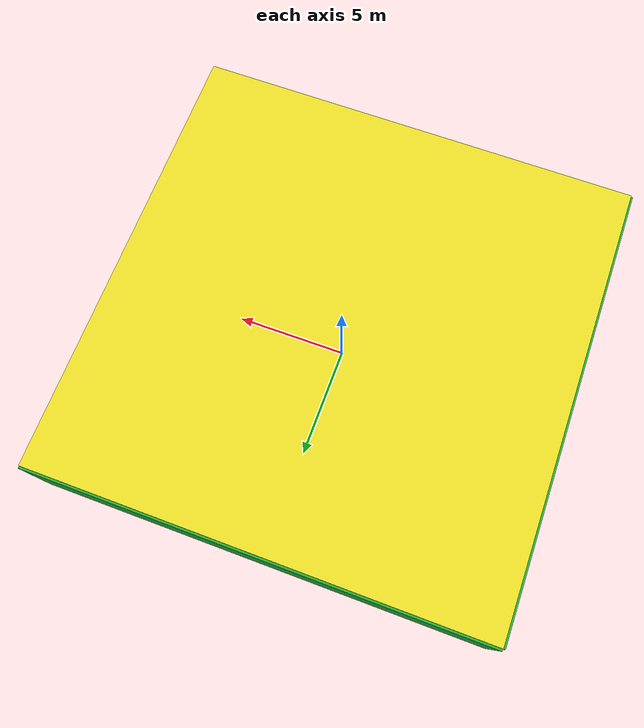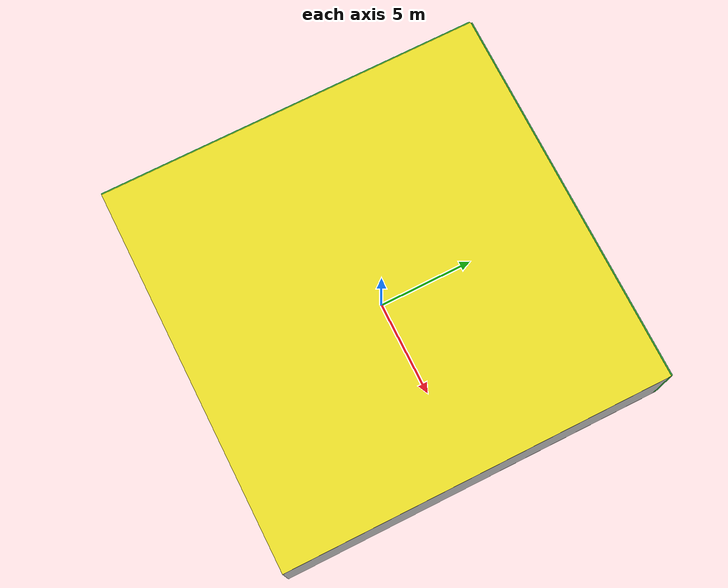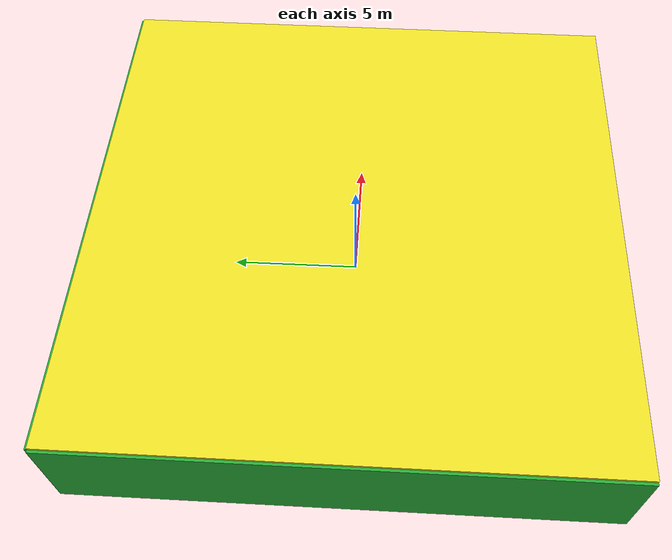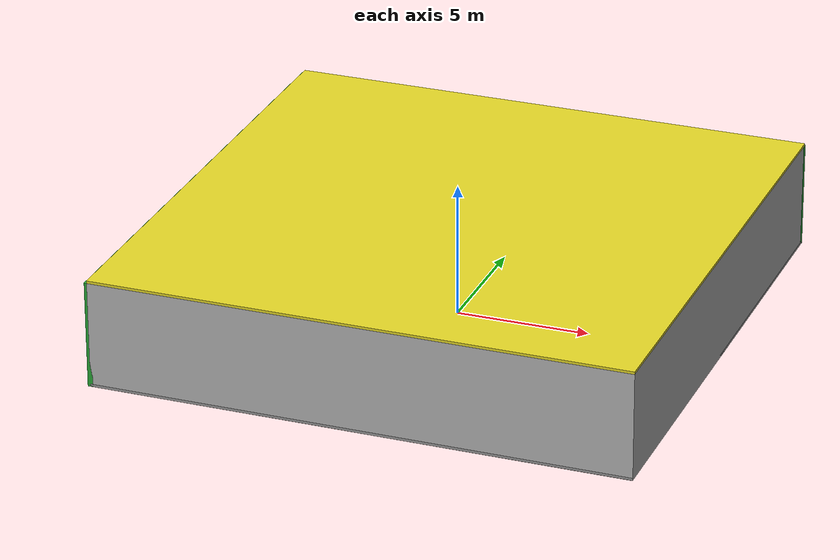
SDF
<sdf version="1.4">
 <world name="default">
  <physics type="ode">
   <max_step_size>0.001</max_step_size>
   <real_time_factor>1</real_time_factor>
   <real_time_update_rate>1000</real_time_update_rate>
   <gravity>0 0 -9.8</gravity>
  </physics>
  <scene><ambient>0.4 0.4 0.4 1</ambient><background>0.7 0.7 0.7 1</background><shadows>1</shadows></scene>
  <model name="Surrounding">
   <static>1</static>
   <link name="Ceiling">
    <collision name="Ceiling_Collision"><geometry><box><size>20 20 0.1</size></box></geometry></collision>
    <visual name="Ceiling_Visual">
     <geometry><box><size>20 20 0.1</size></box></geometry>
     <material>
      <script><uri>file://media/materials/scripts/gazebo.material</uri><name>Gazebo/YellowGlow</name></script>
     </material>
    </visual>
    <pose>0 0 4.05 0 0 0</pose>
   </link>
   <link name="Wall_South">
    <collision name="Wall_South_Collision">
     <geometry><box><size>20 0 4</size></box></geometry>
     <pose>0 0 2 0 -0 0</pose>
    </collision>
    <visual name="Wall_South_Visual">
     <pose>0 0 2 0 -0 0</pose>
     <geometry><box><size>20 0 4</size></box></geometry>
     <material>
      <script><uri>file://media/materials/scripts/gazebo.material</uri><name>Gazebo/LightOff</name></script>
     </material>
    </visual>
    <velocity_decay><linear>0</linear><angular>0</angular></velocity_decay>
    <pose>0 -10 0 0 -0 0</pose>
   </link>
   <link name="Wall_East">
    <collision name="Wall_21_Collision">
     <geometry><box><size>20 0 4</size></box></geometry>
     <pose>0 0 2 0 -0 0</pose>
    </collision>
    <visual name="Wall_21_Visual">
     <pose>0 0 2 0 -0 0</pose>
     <geometry><box><size>20 0 4</size></box></geometry>
     <material>
      <script><uri>file://media/materials/scripts/gazebo.material</uri><name>Gazebo/CloudySky</name></script>
     </material>
    </visual>
    <velocity_decay><linear>0</linear><angular>0</angular></velocity_decay>
    <pose>10 0 0 0 -0 1.5708</pose>
   </link>
   <link name="Wall_North">
    <collision name="Wall_22_Collision">
     <geometry><box><size>20 0.2 4</size></box></geometry>
     <pose>0 0 2 0 -0 0</pose>
    </collision>
    <visual name="Wall_22_Visual">
     <pose>0 0 2 0 -0 0</pose>
     <geometry><box><size>20 0.2 4</size></box></geometry>
     <material>
      <script><uri>file://media/materials/scripts/gazebo.material</uri><name>Gazebo/Green</name></script>
     </material>
    </visual>
    <velocity_decay><linear>0</linear><angular>0</angular></velocity_decay>
    <pose>0 10 0 0 -0 0</pose>
   </link>
   <link name="Wall_West">
    <collision name="Wall_23_Collision">
     <geometry><box><size>20 0.2 4</size></box></geometry>
     <pose>0 0 2 0 -0 0</pose>
    </collision>
    <visual name="Wall_23_Visual">
     <pose>0 0 2 0 -0 0</pose>
     <geometry><box><size>20 0.2 4</size></box></geometry>
     <material>
      <script><uri>file://media/materials/scripts/gazebo.material</uri><name>Gazebo/Green</name></script>
     </material>
    </visual>
    <velocity_decay><linear>0</linear><angular>0</angular></velocity_decay>
    <pose>-10 0 0 0 0 -1.5708</pose>
   </link>
   <link name="Ground_link">
    <collision name="collision">
     <pose>0 0 .05 0 -0 0</pose>
     <geometry><box><size>20 20 0.1</size></box></geometry>
    </collision>
    <visual name="visual">
     <pose>0 0 .05 0 -0 0</pose>
     <geometry><box><size>20 20 0.1</size></box></geometry>
     <material>
      <script><uri>file://media/materials/scripts/gazebo.material</uri><name>Gazebo/GreyGradientSky</name></script>
     </material>
    </visual>
   </link>
   <static>1</static>
  </model>
  <spherical_coordinates>
   <surface_model>EARTH_WGS84</surface_model>
   <latitude_deg>0</latitude_deg>
   <longitude_deg>0</longitude_deg>
   <elevation>0</elevation>
   <heading_deg>0</heading_deg>
  </spherical_coordinates>
  <light name="lightball_0" type="diffuse">
   <diffuse>0.8 0.8 0.8 1</diffuse>
   <specular>0.2 0.2 0.2 1</specular>
   <attenuation>
    <range>100</range>
    <constant>0.7</constant>
    <linear>0.01</linear>
    <quadratic>0.001</quadratic>
   </attenuation>
   <direction>-0.5 0.1 -0.9</direction>
   <pose>2.07651645189 -0.517278232433 2.10613222889 0 0 0</pose>
  </light>
  <light name="lightball_1" type="diffuse">
   <diffuse>0.8 0.8 0.8 1</diffuse>
   <specular>0.2 0.2 0.2 1</specular>
   <attenuation>
    <range>100</range>
    <constant>0.7</constant>
    <linear>0.01</linear>
    <quadratic>0.001</quadratic>
   </attenuation>
   <direction>-0.5 0.1 -0.9</direction>
   <pose>-3.01754881086 -6.61165223015 2.10434962707 0 0 0</pose>
  </light>
  <light name="lightball_2" type="diffuse">
   <diffuse>0.8 0.8 0.8 1</diffuse>
   <specular>0.2 0.2 0.2 1</specular>
   <attenuation>
    <range>100</range>
    <constant>0.7</constant>
    <linear>0.01</linear>
    <quadratic>0.001</quadratic>
   </attenuation>
   <direction>-0.5 0.1 -0.9</direction>
   <pose>9.29420820026 -7.21264574294 2.51164243913 0 0 0</pose>
  </light>
  <light name="lightball_3" type="diffuse">
   <diffuse>0.8 0.8 0.8 1</diffuse>
   <specular>0.2 0.2 0.2 1</specular>
   <attenuation>
    <range>100</range>
    <constant>0.7</constant>
    <linear>0.01</linear>
    <quadratic>0.001</quadratic>
   </attenuation>
   <direction>-0.5 0.1 -0.9</direction>
   <pose>2.94290183882 6.1584112861 2.55164455822 0 0 0</pose>
  </light>
  <light name="lightball_4" type="diffuse">
   <diffuse>0.8 0.8 0.8 1</diffuse>
   <specular>0.2 0.2 0.2 1</specular>
   <attenuation>
    <range>100</range>
    <constant>0.7</constant>
    <linear>0.01</linear>
    <quadratic>0.001</quadratic>
   </attenuation>
   <direction>-0.5 0.1 -0.9</direction>
   <pose>1.13591187894 -9.92658148542 1.60638347789 0 0 0</pose>
  </light>
  <light name="lightball_5" type="diffuse">
   <diffuse>0.8 0.8 0.8 1</diffuse>
   <specular>0.2 0.2 0.2 1</specular>
   <attenuation>
    <range>100</range>
    <constant>0.7</constant>
    <linear>0.01</linear>
    <quadratic>0.001</quadratic>
   </attenuation>
   <direction>-0.5 0.1 -0.9</direction>
   <pose>6.55453131222 7.77052314214 2.03347632682 0 0 0</pose>
  </light>
  <light name="lightball_6" type="diffuse">
   <diffuse>0.8 0.8 0.8 1</diffuse>
   <specular>0.2 0.2 0.2 1</specular>
   <attenuation>
    <range>100</range>
    <constant>0.7</constant>
    <linear>0.01</linear>
    <quadratic>0.001</quadratic>
   </attenuation>
   <direction>-0.5 0.1 -0.9</direction>
   <pose>4.62083144848 -1.65337088045 1.46299985414 0 0 0</pose>
  </light>
  <light name="lightball_7" type="diffuse">
   <diffuse>0.8 0.8 0.8 1</diffuse>
   <specular>0.2 0.2 0.2 1</specular>
   <attenuation>
    <range>100</range>
    <constant>0.7</constant>
    <linear>0.01</linear>
    <quadratic>0.001</quadratic>
   </attenuation>
   <direction>-0.5 0.1 -0.9</direction>
   <pose>3.31762524848 7.75766933735 0.699373100623 0 0 0</pose>
  </light>
  <include>
   <uri>model://robocup_3Dsim_goal</uri>
   <pose>-8.41389315401 6.58474907936 0 0 0 0.734279891293</pose>
  </include>
  <include><uri>model://cabinet</uri><pose>-4.21410095111 -3.42443428052 0 0 0 1.34597486074</pose></include>
  <include><uri>model://table</uri><pose>1.13721824549 -1.77274071517 0 0 0 0.901121389825</pose></include>
  <include>
   <uri>model://construction_cone</uri>
   <pose>4.13190282139 -1.17612756595 0 0 0 0.119093624374</pose>
  </include>
  <include><uri>model://cabinet</uri><pose>5.03171968444 7.75515231576 0 0 0 2.24349890828</pose></include>
 </world>
</sdf>

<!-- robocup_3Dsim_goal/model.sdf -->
<sdf version="1.5">
  <model name="robocup_3d_goal">
    <static>true</static>
    <link name="left_post">
      <pose>0 1.05 0.45 0 0 0</pose>
      <collision name="collision">
        <geometry>
          <cylinder>
            <radius>0.05</radius>
            <length>0.9</length>
          </cylinder>
        </geometry>
      </collision>
      <visual name="visual">
        <geometry>
          <cylinder>
            <radius>0.05</radius>
            <length>0.9</length>
          </cylinder>
        </geometry>
        <material>
          <script>
            <uri>file://media/materials/scripts/gazebo.material</uri>
            <name>Gazebo/ZincYellow</name>
          </script>
        </material>
      </visual>
    </link>
    <link name="left_support_horiz_lower">
      <pose>0.30 1.05 0.01 0 0 0</pose>
      <collision name="collision">
        <geometry>
          <box>
            <size>0.50 0.02 0.02</size>
          </box>
        </geometry>
      </collision>
      <visual name="visual">
        <geometry>
          <box>
            <size>0.50 0.02 0.02</size>
          </box>
        </geometry>
        <material>
          <script>
            <uri>file://media/materials/scripts/gazebo.material</uri>
            <name>Gazebo/White</name>
          </script>
        </material>
      </visual>
    </link>
    <link name="left_support_horiz_upper">
      <pose>0.30 1.05 0.79 0 0 0</pose>
      <collision name="collision">
        <geometry>
          <box>
            <size>0.50 0.02 0.02</size>
          </box>
        </geometry>
      </collision>
      <visual name="visual">
        <geometry>
          <box>
            <size>0.50 0.02 0.02</size>
          </box>
        </geometry>
        <material>
          <script>
            <uri>file://media/materials/scripts/gazebo.material</uri>
            <name>Gazebo/White</name>
          </script>
        </material>
      </visual>
    </link>
    <link name="left_support_vertical">
      <pose>0.56 1.05 0.4 0 1.5708 0</pose>
      <collision name="collision">
        <geometry>
          <box>
            <size>0.80 0.02 0.02</size>
          </box>
        </geometry>
      </collision>
      <visual name="visual">
        <geometry>
          <box>
            <size>0.80 0.02 0.02</size>
          </box>
        </geometry>
        <material>
          <script>
            <uri>file://media/materials/scripts/gazebo.material</uri>
            <name>Gazebo/White</name>
          </script>
        </material>
      </visual>
    </link>
    <link name="right_support_horiz_lower">
      <pose>0.30 -1.05 0.01 0 0 0</pose>
      <collision name="collision">
        <geometry>
          <box>
            <size>0.50 0.02 0.02</size>
          </box>
        </geometry>
      </collision>
      <visual name="visual">
        <geometry>
          <box>
            <size>0.50 0.02 0.02</size>
          </box>
        </geometry>
        <material>
          <script>
            <uri>file://media/materials/scripts/gazebo.material</uri>
            <name>Gazebo/White</name>
          </script>
        </material>
      </visual>
    </link>
    <link name="right_support_horiz_upper">
      <pose>0.30 -1.05 0.79 0 0 0</pose>
      <collision name="collision">
        <geometry>
          <box>
            <size>0.50 0.02 0.02</size>
          </box>
        </geometry>
      </collision>
      <visual name="visual">
        <geometry>
          <box>
            <size>0.50 0.02 0.02</size>
          </box>
        </geometry>
        <material>
          <script>
            <uri>file://media/materials/scripts/gazebo.material</uri>
            <name>Gazebo/White</name>
          </script>
        </material>
      </visual>
    </link>
    <link name="right_support_vertical">
      <pose>0.56 -1.05 0.4 0 1.5708 0</pose>
      <collision name="collision">
        <geometry>
          <box>
            <size>0.80 0.02 0.02</size>
          </box>
        </geometry>
      </collision>
      <visual name="visual">
        <geometry>
          <box>
            <size>0.80 0.02 0.02</size>
          </box>
        </geometry>
        <material>
          <script>
            <uri>file://media/materials/scripts/gazebo.material</uri>
            <name>Gazebo/White</name>
          </script>
        </material>
      </visual>
    </link>
    <link name="center_support_horiz_lower">
      <pose>0.56 0 0.01 0 1.5708 0</pose>
      <collision name="collision">
        <geometry>
          <box>
            <size>0.02 2.08 0.02</size>
          </box>
        </geometry>
      </collision>
      <visual name="visual">
        <geometry>
          <box>
            <size>0.02 2.08 0.02</size>
          </box>
        </geometry>
        <material>
          <script>
            <uri>file://media/materials/scripts/gazebo.material</uri>
            <name>Gazebo/White</name>
          </script>
        </material>
      </visual>
    </link>
    <link name="center_support_horiz_upper">
      <pose>0.56 0 0.79 0 1.5708 0</pose>
      <collision name="collision">
        <geometry>
          <box>
            <size>0.02 2.08 0.02</size>
          </box>
        </geometry>
      </collision>
      <visual name="visual">
        <geometry>
          <box>
            <size>0.02 2.08 0.02</size>
          </box>
        </geometry>
        <material>
          <script>
            <uri>file://media/materials/scripts/gazebo.material</uri>
            <name>Gazebo/White</name>
          </script>
        </material>
      </visual>
    </link>
    <link name="right_post">
      <pose>0 -1.05 0.45 0 0 0</pose>
      <collision name="collision">
        <geometry>
          <cylinder>
            <radius>0.05</radius>
            <length>0.9</length>
          </cylinder>
        </geometry>
      </collision>
      <visual name="visual">
        <geometry>
          <cylinder>
            <radius>0.05</radius>
            <length>0.9</length>
          </cylinder>
        </geometry>
        <material>
          <script>
            <uri>file://media/materials/scripts/gazebo.material</uri>
            <name>Gazebo/ZincYellow</name>
          </script>
        </material>
      </visual>
    </link>
    <link name="crossbar">
      <pose>0 0 0.85 1.57 1.57 0</pose>
      <collision name="collision">
        <geometry>
          <cylinder>
            <radius>0.05</radius>
            <length>2.0</length>
          </cylinder>
        </geometry>
      </collision>
      <visual name="visual">
        <geometry>
          <cylinder>
            <radius>0.05</radius>
            <length>2.0</length>
          </cylinder>
        </geometry>
        <material>
          <script>
            <uri>file://media/materials/scripts/gazebo.material</uri>
            <name>Gazebo/ZincYellow</name>
          </script>
        </material>
      </visual>
    </link>
    <link name="center_net">
      <pose>0.56 0 0.40 0 0 0</pose>
      <collision name="collision">
        <geometry>
          <box>
            <size>0.01 2.1 0.80</size>
          </box>
        </geometry>
      </collision>
      <visual name="visual">
        <geometry>
          <box>
            <size>0.01 2.1 0.80</size>
          </box>
        </geometry>
        <material>
          <script>
            <uri>model://../model_source/models/robocup09_spl_field/materials/scripts/</uri>
            <uri>model://../model_source/models/robocup09_spl_field/materials/textures/</uri>
            <name>RoboCup/Net</name>
          </script>
        </material>
      </visual>
    </link>
    <link name="left_net">
      <pose>0.30 1.05 0.40 0 0 0</pose>
      <collision name="collision">
        <geometry>
          <box>
            <size>0.50 0.01 0.76</size>
          </box>
        </geometry>
      </collision>
      <visual name="visual">
        <geometry>
          <box>
            <size>0.50 0.01 0.76</size>
          </box>
        </geometry>
        <material>
          <script>
            <uri>model://../model_source/models/robocup09_spl_field/materials/scripts/</uri>
            <uri>model://../model_source/models/robocup09_spl_field/materials/textures/</uri>
            <name>RoboCup/Net</name>
          </script>
        </material>
      </visual>
    </link>
    <link name="right_net">
      <pose>0.30 -1.05 0.40 0 0 0</pose>
      <collision name="collision">
        <geometry>
          <box>
            <size>0.50 0.01 0.76</size>
          </box>
        </geometry>
      </collision>
      <visual name="visual">
        <geometry>
          <box>
            <size>0.50 0.01 0.76</size>
          </box>
        </geometry>
        <material>
          <script>
            <uri>model://../model_source/models/robocup09_spl_field/materials/scripts/</uri>
            <uri>model://../model_source/models/robocup09_spl_field/materials/textures/</uri>
            <name>RoboCup/Net</name>
          </script>
        </material>
      </visual>
    </link>
  </model>
</sdf>

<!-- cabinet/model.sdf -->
<sdf version="1.5">
  <model name="cabinet">
    <static>true</static>
    <link name="cabinet_bottom_plate">
      <inertial>
        <pose>0 0 -1 0 0 0</pose>
        <inertia>
          <ixx>2.050000</ixx>
          <ixy>0</ixy>
          <ixz>0</ixz>
          <iyy>2.050000</iyy>
          <iyz>0</iyz>
          <izz>2.050000</izz>
        </inertia>
        <mass>25.000000</mass>
      </inertial>
      <collision name="cabinet_bottom_plate_geom">
        <pose>0 0 0.010000 0 0 0</pose>
        <geometry>
          <box>
            <size>0.450000 0.450000 0.020000</size>
          </box>
        </geometry>
      </collision>
      <visual name="cabinet_bottom_plate_geom_visual">
        <pose>0 0 0.010000 0 0 0</pose>
        <geometry>
          <box>
            <size>0.450000 0.450000 0.020000</size>
          </box>
        </geometry>
        <material>
          <script>
            <uri>model://media/materials/scripts/gazebo.material</uri>
            <name>Gazebo/Wood</name>
          </script>
        </material>
      </visual>
      <collision name="cabinet_bottom_plate_geom_cabinet_back_plate">
        <pose>0.235000 0 0.510000 0 0 0</pose>
        <geometry>
          <box>
            <size>0.020000 0.450000 1.020000</size>
          </box>
        </geometry>
      </collision>
      <visual name="cabinet_bottom_plate_geom_cabinet_back_plate_visual">
        <pose>0.235000 0 0.510000 0 0 0</pose>
        <geometry>
          <box>
            <size>0.020000 0.450000 1.020000</size>
          </box>
        </geometry>
        <material>
          <script>
            <uri>model://media/materials/scripts/gazebo.material</uri>
            <name>Gazebo/Wood</name>
          </script>
        </material>
      </visual>
      <collision name="cabinet_bottom_plate_geom_cabinet_left_plate">
        <pose>0 0.235000 0.510000 0 0 0</pose>
        <geometry>
          <box>
            <size>0.450000 0.020000 1.020000</size>
          </box>
        </geometry>
      </collision>
      <visual name="cabinet_bottom_plate_geom_cabinet_left_plate_visual">
        <pose>0 0.235000 0.510000 0 0 0</pose>
        <geometry>
          <box>
            <size>0.450000 0.020000 1.020000</size>
          </box>
        </geometry>
        <material>
          <script>
            <uri>model://media/materials/scripts/gazebo.material</uri>
            <name>Gazebo/Wood</name>
          </script>
        </material>
      </visual>
      <collision name="cabinet_bottom_plate_geom_cabinet_middle_plate">
        <pose>0 0 0.510000 0 0 0</pose>
        <geometry>
          <box>
            <size>0.450000 0.450000 0.020000</size>
          </box>
        </geometry>
      </collision>
      <visual name="cabinet_bottom_plate_geom_cabinet_middle_plate_visual">
        <pose>0 0 0.510000 0 0 0</pose>
        <geometry>
          <box>
            <size>0.450000 0.450000 0.020000</size>
          </box>
        </geometry>
        <material>
          <script>
            <uri>model://media/materials/scripts/gazebo.material</uri>
            <name>Gazebo/Wood</name>
          </script>
        </material>
      </visual>
      <collision name="cabinet_bottom_plate_geom_cabinet_right_plate">
        <pose>0 -0.235000 0.510000 0 0 0</pose>
        <geometry>
          <box>
            <size>0.450000 0.020000 1.020000</size>
          </box>
        </geometry>
      </collision>
      <visual name="cabinet_bottom_plate_geom_cabinet_right_plate_visual">
        <pose>0 -0.235000 0.510000 0 0 0</pose>
        <geometry>
          <box>
            <size>0.450000 0.020000 1.020000</size>
          </box>
        </geometry>
        <material>
          <script>
            <uri>model://media/materials/scripts/gazebo.material</uri>
            <name>Gazebo/Wood</name>
          </script>
        </material>
      </visual>
      <collision name="cabinet_bottom_plate_geom_cabinet_top_plate">
        <pose>0 0 1.010000 0 0 0</pose>
        <geometry>
          <box>
            <size>0.450000 0.450000 0.020000</size>
          </box>
        </geometry>
      </collision>
      <visual name="cabinet_bottom_plate_geom_cabinet_top_plate_visual">
        <pose>0 0 1.010000 0 0 0</pose>
        <geometry>
          <box>
            <size>0.450000 0.450000 0.020000</size>
          </box>
        </geometry>
        <material>
          <script>
            <uri>model://media/materials/scripts/gazebo.material</uri>
            <name>Gazebo/Wood</name>
          </script>
        </material>
      </visual>
    </link>
  </model>
</sdf>

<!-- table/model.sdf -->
<sdf version="1.5">
  <model name="table">
    <static>true</static>
    <link name="link">
      <collision name="surface">
        <pose>0 0 1.0 0 0 0</pose>
        <geometry>
          <box>
            <size>1.5 0.8 0.03</size>
          </box>
        </geometry>
        <surface>
          <friction>
            <ode>
              <mu>0.6</mu>
              <mu2>0.6</mu2>
            </ode>
          </friction>
        </surface>
      </collision>
      <visual name="visual1">
        <pose>0 0 1.0 0 0 0</pose>
        <geometry>
          <box>
            <size>1.5 0.8 0.03</size>
          </box>
        </geometry>
        <material>
          <script>
            <uri>model://media/materials/scripts/gazebo.material</uri>
            <name>Gazebo/Wood</name>
          </script>
        </material>
      </visual>
      <collision name="front_left_leg">
        <pose>0.68 0.38 0.5 0 0 0</pose>
        <geometry>
          <cylinder>
            <radius>0.02</radius>
            <length>1.0</length>
          </cylinder>
        </geometry>
      </collision>
      <visual name="front_left_leg">
        <pose>0.68 0.38 0.5 0 0 0</pose>
        <geometry>
          <cylinder>
            <radius>0.02</radius>
            <length>1.0</length>
          </cylinder>
        </geometry>
        <material>
          <script>
            <uri>model://media/materials/scripts/gazebo.material</uri>
            <name>Gazebo/Grey</name>
          </script>
        </material>
      </visual>
      <collision name="front_right_leg">
        <pose>0.68 -0.38 0.5 0 0 0</pose>
        <geometry>
          <cylinder>
            <radius>0.02</radius>
            <length>1.0</length>
          </cylinder>
        </geometry>
      </collision>
      <visual name="front_right_leg">
        <pose>0.68 -0.38 0.5 0 0 0</pose>
        <geometry>
          <cylinder>
            <radius>0.02</radius>
            <length>1.0</length>
          </cylinder>
        </geometry>
        <material>
          <script>
            <uri>model://media/materials/scripts/gazebo.material</uri>
            <name>Gazebo/Grey</name>
          </script>
        </material>
      </visual>
      <collision name="back_right_leg">
        <pose>-0.68 -0.38 0.5 0 0 0</pose>
        <geometry>
          <cylinder>
            <radius>0.02</radius>
            <length>1.0</length>
          </cylinder>
        </geometry>
      </collision>
      <visual name="back_right_leg">
        <pose>-0.68 -0.38 0.5 0 0 0</pose>
        <geometry>
          <cylinder>
            <radius>0.02</radius>
            <length>1.0</length>
          </cylinder>
        </geometry>
        <material>
          <script>
            <uri>model://media/materials/scripts/gazebo.material</uri>
            <name>Gazebo/Grey</name>
          </script>
        </material>
      </visual>
      <collision name="back_left_leg">
        <pose>-0.68 0.38 0.5 0 0 0</pose>
        <geometry>
          <cylinder>
            <radius>0.02</radius>
            <length>1.0</length>
          </cylinder>
        </geometry>
      </collision>
      <visual name="back_left_leg">
        <pose>-0.68 0.38 0.5 0 0 0</pose>
        <geometry>
          <cylinder>
            <radius>0.02</radius>
            <length>1.0</length>
          </cylinder>
        </geometry>
        <material>
          <script>
            <uri>model://media/materials/scripts/gazebo.material</uri>
            <name>Gazebo/Grey</name>
          </script>
        </material>
      </visual>
    </link>
  </model>
</sdf>

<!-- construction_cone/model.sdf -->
<sdf version="1.5">
  <model name="Construction Cone">
    <link name="link">
      <collision name="collision">
        <geometry>
          <mesh>
            <scale>10 10 10</scale>
            <uri>file://isr-testbed/construction_cone/meshes/construction_cone.dae</uri>
          </mesh>
        </geometry>
      </collision>
      <visual name="visual">
        <geometry>
          <mesh>
            <scale>10 10 10</scale>
            <uri>file://isr-testbed/construction_cone/meshes/construction_cone.dae</uri>
          </mesh>
        </geometry>
      </visual>
    </link>
  </model>
</sdf>
